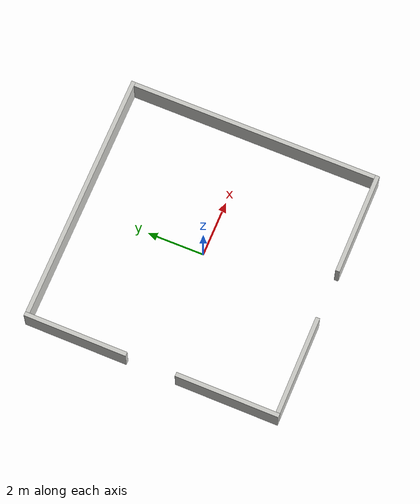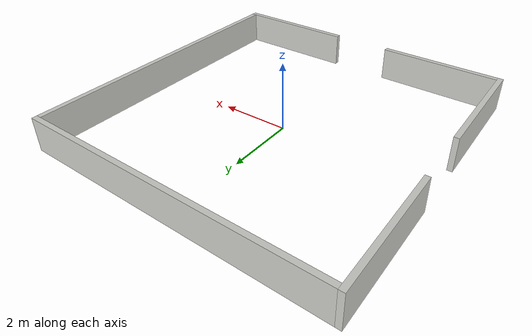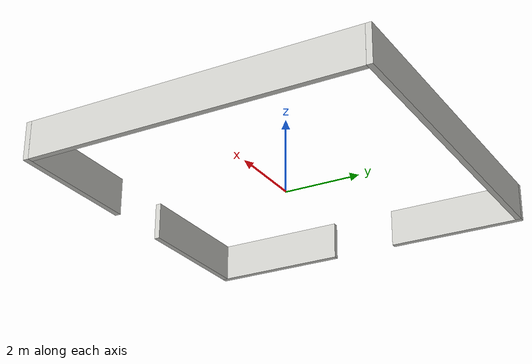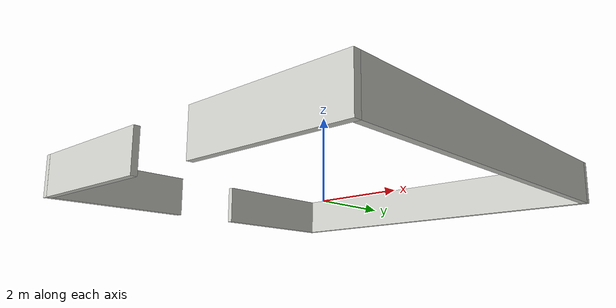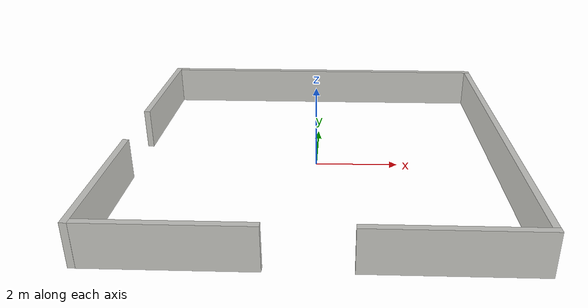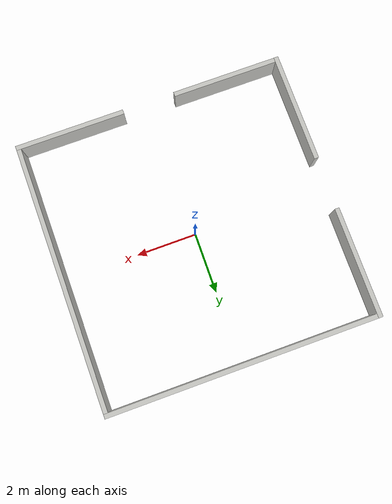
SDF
<?xml version='1.0'?>
<sdf version='1.6'>
  <model name='room_5x5_right'>
    <static>1</static>
    <pose frame=''>0 0 0 0 -0 0</pose>
    <link name='Wall_1'>
      <collision name='Wall_1_Collision'>
        <geometry>
          <box>
            <size>8.75 0.15 1.0</size>
          </box>
        </geometry>
        <pose frame=''>0 0 0.5 0 -0 0</pose>
      </collision>
      <visual name='Wall_1_Visual'>
        <pose frame=''>0 0 0.5 0 -0 0</pose>
        <geometry>
          <box>
            <size>8.75 0.15 1.0</size>
          </box>
        </geometry>
        <material>
          <script>
            <uri>file://media/materials/scripts/gazebo.material</uri>
            <name>Gazebo/CeilingTiled</name>
          </script>
          <ambient>1 0.764706 0.305882 1</ambient>
        </material>
      </visual>
      <pose frame=''>4.44912 -0.000431 0 0 0 -1.5708</pose>
    </link>
    <link name='Wall_2'>
      <collision name='Wall_2_Collision'>
        <geometry>
          <box>
            <size>3.65 0.15 1.0</size>
          </box>
        </geometry>
        <pose frame=''>0 0 0.5 0 -0 0</pose>
      </collision>
      <visual name='Wall_2_Visual'>
        <pose frame=''>0 0 0.5 0 -0 0</pose>
        <geometry>
          <box>
            <size>3.65 0.15 1.0</size>
          </box>
        </geometry>
        <material>
          <script>
            <uri>file://media/materials/scripts/gazebo.material</uri>
            <name>Gazebo/CeilingTiled</name>
          </script>
          <ambient>1 0.764706 0.305882 1</ambient>
        </material>
      </visual>
      <pose frame=''>-4.44961 2.70076 0 0 0 -1.5708</pose>
    </link>
    <link name='Wall_3'>
      <collision name='Wall_3_Collision'>
        <geometry>
          <box>
            <size>3.65 0.15 1.0</size>
          </box>
        </geometry>
        <pose frame=''>0 0 0.5 0 -0 0</pose>
      </collision>
      <visual name='Wall_3_Visual'>
        <pose frame=''>0 0 0.5 0 -0 0</pose>
        <geometry>
          <box>
            <size>3.65 0.15 1.0</size>
          </box>
        </geometry>
        <material>
          <script>
            <uri>file://media/materials/scripts/gazebo.material</uri>
            <name>Gazebo/CeilingTiled</name>
          </script>
          <ambient>1 0.764706 0.305882 1</ambient>
        </material>
      </visual>
      <pose frame=''>2.69961 -4.45076 0 0 -0 0</pose>
    </link>
    <link name='Wall_4'>
      <collision name='Wall_4_Collision'>
        <geometry>
          <box>
            <size>8.90028 0.15 1.0</size>
          </box>
        </geometry>
        <pose frame=''>0 0 0.5 0 -0 0</pose>
      </collision>
      <visual name='Wall_4_Visual'>
        <pose frame=''>0 0 0.5 0 -0 0</pose>
        <geometry>
          <box>
            <size>8.90028 0.15 1.0</size>
          </box>
        </geometry>
        <material>
          <script>
            <uri>file://media/materials/scripts/gazebo.material</uri>
            <name>Gazebo/CeilingTiled</name>
          </script>
          <ambient>1 0.764706 0.305882 1</ambient>
        </material>
      </visual>
      <pose frame=''>0.074346 4.45022 0 0 0 -6.5e-05</pose>
    </link>
    <link name='Wall_5'>
      <collision name='Wall_5_Collision'>
        <geometry>
          <box>
            <size>3.5 0.15 1.0</size>
          </box>
        </geometry>
        <pose frame=''>0 0 0.5 0 -0 0</pose>
      </collision>
      <visual name='Wall_5_Visual'>
        <pose frame=''>0 0 0.5 0 -0 0</pose>
        <geometry>
          <box>
            <size>3.5 0.15 1.0</size>
          </box>
        </geometry>
        <material>
          <script>
            <uri>file://media/materials/scripts/gazebo.material</uri>
            <name>Gazebo/CeilingTiled</name>
          </script>
          <ambient>1 0.764706 0.305882 1</ambient>
        </material>
      </visual>
      <pose frame=''>-2.62383 -4.4498 0 0 -0 0</pose>
    </link>
    <link name='Wall_6'>
      <collision name='Wall_6_Collision'>
        <geometry>
          <box>
            <size>3.65 0.15 1.0</size>
          </box>
        </geometry>
        <pose frame=''>0 0 0.5 0 -0 0</pose>
      </collision>
      <visual name='Wall_6_Visual'>
        <pose frame=''>0 0 0.5 0 -0 0</pose>
        <geometry>
          <box>
            <size>3.65 0.15 1.0</size>
          </box>
        </geometry>
        <material>
          <script>
            <uri>file://media/materials/scripts/gazebo.material</uri>
            <name>Gazebo/CeilingTiled</name>
          </script>
          <ambient>1 0.764706 0.305882 1</ambient>
        </material>
      </visual>
      <pose frame=''>-4.44941 -2.70044 0 0 0 -1.5708</pose>
    </link>
  </model>
</sdf>
